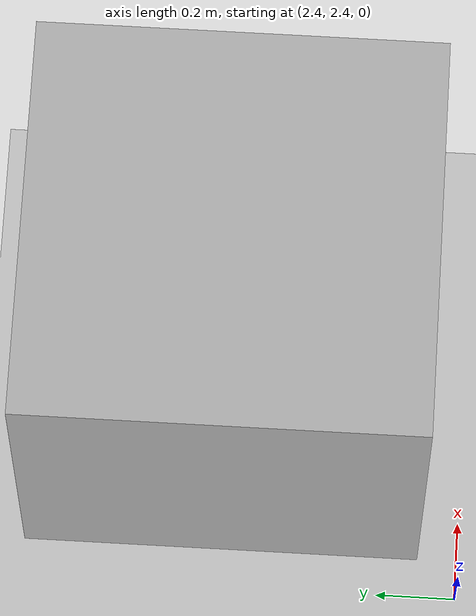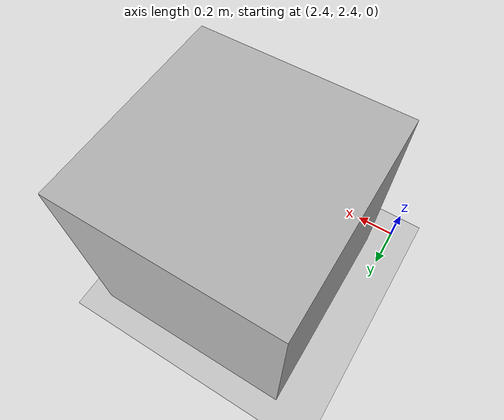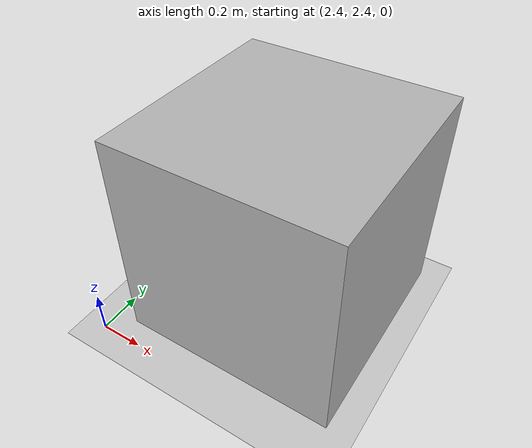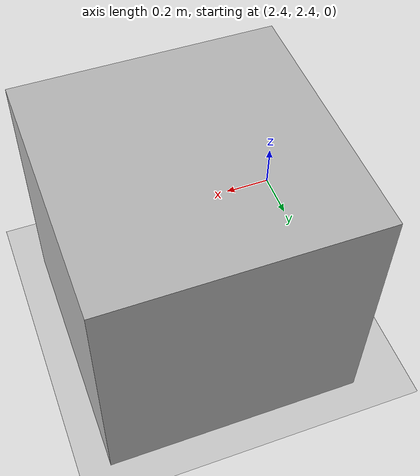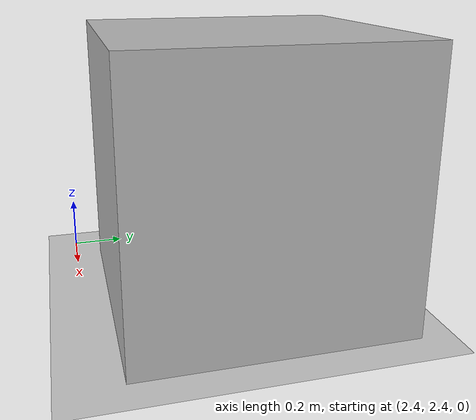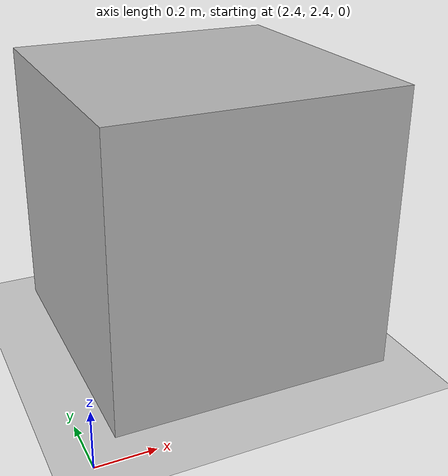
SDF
<?xml version='1.0'?>
<sdf version="1.6">
<world name="room">
  <include>
    <uri>model://sun</uri>
  </include>
  <include>
    <uri>model://ground_plane</uri>
  </include>
  <model name="my_model">
    <pose>3 3 0.5 0 0 0</pose>
    <static>true</static>
    <link name="link">
      <inertial>
        <mass>1.0</mass>
        <inertia> <!-- inertias are tricky to compute -->
          <!-- http://gazebosim.org/tutorials?tut=inertia&cat=build_robot -->
          <ixx>0.083</ixx>       <!-- for a box: ixx = 0.083 * mass * (y*y + z*z) -->
          <ixy>0.0</ixy>         <!-- for a box: ixy = 0 -->
          <ixz>0.0</ixz>         <!-- for a box: ixz = 0 -->
          <iyy>0.083</iyy>       <!-- for a box: iyy = 0.083 * mass * (x*x + z*z) -->
          <iyz>0.0</iyz>         <!-- for a box: iyz = 0 -->
          <izz>0.083</izz>       <!-- for a box: izz = 0.083 * mass * (x*x + y*y) -->
        </inertia>
      </inertial>
      <collision name="collision">
        <geometry>
          <box>
            <size>1 1 1</size>
          </box>
        </geometry>
      </collision>
      <visual name="visual">
        <geometry>
          <box>
            <size>1 1 1</size>
          </box>
        </geometry>
      </visual>
    </link>
  </model>
</world>
</sdf>
